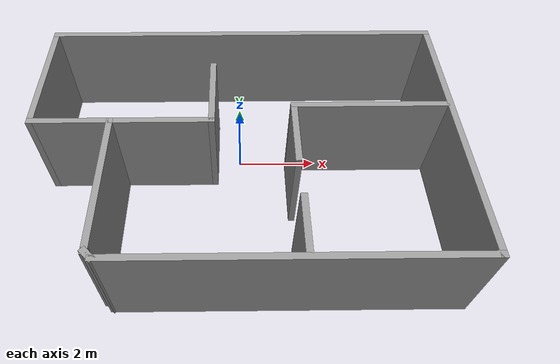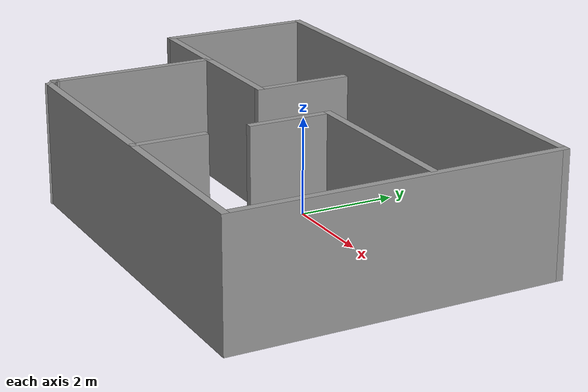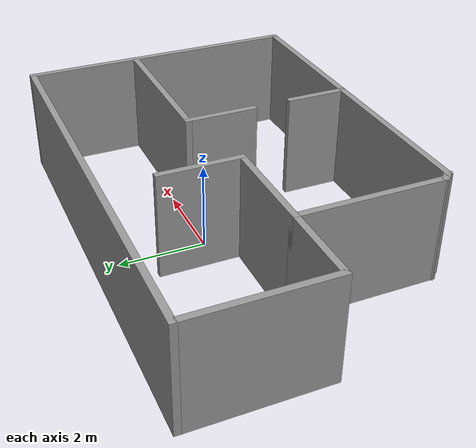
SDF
<?xml version='1.0'?>
<sdf version='1.7'>
  <model name='room'>
    <pose>0.065 -0.825533 0 0 -0 0</pose>
    <link name='Wall_0'>
      <collision name='Wall_0_Collision'>
        <geometry>
          <box>
            <size>8 0.15 2.5</size>
          </box>
        </geometry>
        <pose>0 0 1.25 0 -0 0</pose>
      </collision>
      <visual name='Wall_0_Visual'>
        <pose>0 0 1.25 0 -0 0</pose>
        <geometry>
          <box>
            <size>8 0.15 2.5</size>
          </box>
        </geometry>
        <material>
          <script>
            <uri>file://media/materials/scripts/gazebo.material</uri>
            <name>Gazebo/Grey</name>
          </script>
          <ambient>1 1 1 1</ambient>
        </material>
        <meta>
          <layer>0</layer>
        </meta>
      </visual>
      <pose>1 -3.28447 0 0 -0 0</pose>
    </link>
    <link name='Wall_1'>
      <collision name='Wall_1_Collision'>
        <geometry>
          <box>
            <size>6.75 0.15 2.5</size>
          </box>
        </geometry>
        <pose>0 0 1.25 0 -0 0</pose>
      </collision>
      <visual name='Wall_1_Visual'>
        <pose>0 0 1.25 0 -0 0</pose>
        <geometry>
          <box>
            <size>6.75 0.15 2.5</size>
          </box>
        </geometry>
        <material>
          <script>
            <uri>file://media/materials/scripts/gazebo.material</uri>
            <name>Gazebo/Grey</name>
          </script>
          <ambient>1 1 1 1</ambient>
        </material>
        <meta>
          <layer>0</layer>
        </meta>
      </visual>
      <pose>4.925 0.015533 0 0 -0 1.5708</pose>
    </link>
    <link name='Wall_10'>
      <collision name='Wall_10_Collision'>
        <geometry>
          <box>
            <size>2 0.15 2.5</size>
          </box>
        </geometry>
        <pose>0 0 1.25 0 -0 0</pose>
      </collision>
      <visual name='Wall_10_Visual'>
        <pose>0 0 1.25 0 -0 0</pose>
        <geometry>
          <box>
            <size>2 0.15 2.5</size>
          </box>
        </geometry>
        <material>
          <script>
            <uri>file://media/materials/scripts/gazebo.material</uri>
            <name>Gazebo/Grey</name>
          </script>
          <ambient>1 1 1 1</ambient>
        </material>
        <meta>
          <layer>0</layer>
        </meta>
      </visual>
      <pose>-0.725 1.14053 0 0 -0 1.5708</pose>
    </link>
    <link name='Wall_12'>
      <collision name='Wall_12_Collision'>
        <geometry>
          <box>
            <size>3.75 0.15 2.5</size>
          </box>
        </geometry>
        <pose>0 0 1.25 0 -0 0</pose>
      </collision>
      <visual name='Wall_12_Visual'>
        <pose>0 0 1.25 0 -0 0</pose>
        <geometry>
          <box>
            <size>3.75 0.15 2.5</size>
          </box>
        </geometry>
        <material>
          <script>
            <uri>file://media/materials/scripts/gazebo.material</uri>
            <name>Gazebo/Grey</name>
          </script>
          <ambient>1 1 1 1</ambient>
        </material>
        <meta>
          <layer>0</layer>
        </meta>
      </visual>
      <pose>3.01252 0.672837 0 0 -0 3.14159</pose>
    </link>
    <link name='Wall_13'>
      <collision name='Wall_13_Collision'>
        <geometry>
          <box>
            <size>1.75 0.15 2.5</size>
          </box>
        </geometry>
        <pose>0 0 1.25 0 -0 0</pose>
      </collision>
      <visual name='Wall_13_Visual'>
        <pose>0 0 1.25 0 -0 0</pose>
        <geometry>
          <box>
            <size>1.75 0.15 2.5</size>
          </box>
        </geometry>
        <material>
          <script>
            <uri>file://media/materials/scripts/gazebo.material</uri>
            <name>Gazebo/Grey</name>
          </script>
          <ambient>1 1 1 1</ambient>
        </material>
        <meta>
          <layer>0</layer>
        </meta>
      </visual>
      <pose>1.21252 -0.127163 0 0 -0 -1.5708</pose>
    </link>
    <link name='Wall_15'>
      <collision name='Wall_15_Collision'>
        <geometry>
          <box>
            <size>1.5 0.15 2.5</size>
          </box>
        </geometry>
        <pose>0 0 1.25 0 -0 0</pose>
      </collision>
      <visual name='Wall_15_Visual'>
        <pose>0 0 1.25 0 -0 0</pose>
        <geometry>
          <box>
            <size>1.5 0.15 2.5</size>
          </box>
        </geometry>
        <material>
          <script>
            <uri>file://media/materials/scripts/gazebo.material</uri>
            <name>Gazebo/Grey</name>
          </script>
          <ambient>1 1 1 1</ambient>
        </material>
        <meta>
          <layer>0</layer>
        </meta>
      </visual>
      <pose>1.24454 -2.59069 0 0 -0 -1.5708</pose>
    </link>
    <link name='Wall_2'>
      <collision name='Wall_2_Collision'>
        <geometry>
          <box>
            <size>10 0.15 2.5</size>
          </box>
        </geometry>
        <pose>0 0 1.25 0 -0 0</pose>
      </collision>
      <visual name='Wall_2_Visual'>
        <pose>0 0 1.25 0 -0 0</pose>
        <geometry>
          <box>
            <size>10 0.15 2.5</size>
          </box>
        </geometry>
        <material>
          <script>
            <uri>file://media/materials/scripts/gazebo.material</uri>
            <name>Gazebo/Grey</name>
          </script>
          <ambient>1 1 1 1</ambient>
        </material>
        <meta>
          <layer>0</layer>
        </meta>
      </visual>
      <pose>0 3.31553 0 0 -0 3.14159</pose>
    </link>
    <link name='Wall_3'>
      <collision name='Wall_3_Collision'>
        <geometry>
          <box>
            <size>3.25 0.15 2.5</size>
          </box>
        </geometry>
        <pose>0 0 1.25 0 -0 0</pose>
      </collision>
      <visual name='Wall_3_Visual'>
        <pose>0 0 1.25 0 -0 0</pose>
        <geometry>
          <box>
            <size>3.25 0.15 2.5</size>
          </box>
        </geometry>
        <material>
          <script>
            <uri>file://media/materials/scripts/gazebo.material</uri>
            <name>Gazebo/Grey</name>
          </script>
          <ambient>1 1 1 1</ambient>
        </material>
        <meta>
          <layer>0</layer>
        </meta>
      </visual>
      <pose>-4.925 1.76553 0 0 -0 -1.5708</pose>
    </link>
    <link name='Wall_4'>
      <collision name='Wall_4_Collision'>
        <geometry>
          <box>
            <size>2 0.15 2.5</size>
          </box>
        </geometry>
        <pose>0 0 1.25 0 -0 0</pose>
      </collision>
      <visual name='Wall_4_Visual'>
        <pose>0 0 1.25 0 -0 0</pose>
        <geometry>
          <box>
            <size>2 0.15 2.5</size>
          </box>
        </geometry>
        <material>
          <script>
            <uri>file://media/materials/scripts/gazebo.material</uri>
            <name>Gazebo/Grey</name>
          </script>
          <ambient>1 1 1 1</ambient>
        </material>
        <meta>
          <layer>0</layer>
        </meta>
      </visual>
      <pose>-4 0.215533 0 0 -0 0</pose>
    </link>
    <link name='Wall_5'>
      <collision name='Wall_5_Collision'>
        <geometry>
          <box>
            <size>3.5 0.15 2.5</size>
          </box>
        </geometry>
        <pose>0 0 1.25 0 -0 0</pose>
      </collision>
      <visual name='Wall_5_Visual'>
        <pose>0 0 1.25 0 -0 0</pose>
        <geometry>
          <box>
            <size>3.5 0.15 2.5</size>
          </box>
        </geometry>
        <material>
          <script>
            <uri>file://media/materials/scripts/gazebo.material</uri>
            <name>Gazebo/Grey</name>
          </script>
          <ambient>1 1 1 1</ambient>
        </material>
        <meta>
          <layer>0</layer>
        </meta>
      </visual>
      <pose>-3.075 -1.45947 0 0 -0 -1.5708</pose>
    </link>
    <link name='Wall_6'>
      <collision name='Wall_6_Collision'>
        <geometry>
          <box>
            <size>0.15 0.15 2.5</size>
          </box>
        </geometry>
        <pose>0 0 1.25 0 -0 0</pose>
      </collision>
      <visual name='Wall_6_Visual'>
        <pose>0 0 1.25 0 -0 0</pose>
        <geometry>
          <box>
            <size>0.15 0.15 2.5</size>
          </box>
        </geometry>
        <material>
          <script>
            <uri>file://media/materials/scripts/gazebo.material</uri>
            <name>Gazebo/Grey</name>
          </script>
          <ambient>1 1 1 1</ambient>
        </material>
        <meta>
          <layer>0</layer>
        </meta>
      </visual>
      <pose>-3.075 -3.13447 0 0 -0 0</pose>
    </link>
    <link name='Wall_7'>
      <collision name='Wall_7_Collision'>
        <geometry>
          <box>
            <size>0.362132 0.15 2.5</size>
          </box>
        </geometry>
        <pose>0 0 1.25 0 -0 0</pose>
      </collision>
      <visual name='Wall_7_Visual'>
        <pose>0 0 1.25 0 -0 0</pose>
        <geometry>
          <box>
            <size>0.362132 0.15 2.5</size>
          </box>
        </geometry>
        <material>
          <script>
            <uri>file://media/materials/scripts/gazebo.material</uri>
            <name>Gazebo/Grey</name>
          </script>
          <ambient>1 1 1 1</ambient>
        </material>
        <meta>
          <layer>0</layer>
        </meta>
      </visual>
      <pose>-3 -3.20947 0 0 -0 -0.785398</pose>
    </link>
    <link name='Wall_9'>
      <collision name='Wall_9_Collision'>
        <geometry>
          <box>
            <size>2.5 0.15 2.5</size>
          </box>
        </geometry>
        <pose>0 0 1.25 0 -0 0</pose>
      </collision>
      <visual name='Wall_9_Visual'>
        <pose>0 0 1.25 0 -0 0</pose>
        <geometry>
          <box>
            <size>2.5 0.15 2.5</size>
          </box>
        </geometry>
        <material>
          <script>
            <uri>file://media/materials/scripts/gazebo.material</uri>
            <name>Gazebo/Grey</name>
          </script>
          <ambient>1 1 1 1</ambient>
        </material>
        <meta>
          <layer>0</layer>
        </meta>
      </visual>
      <pose>-1.9 0.215533 0 0 -0 0</pose>
    </link>
    <static>1</static>
  </model>
</sdf>
